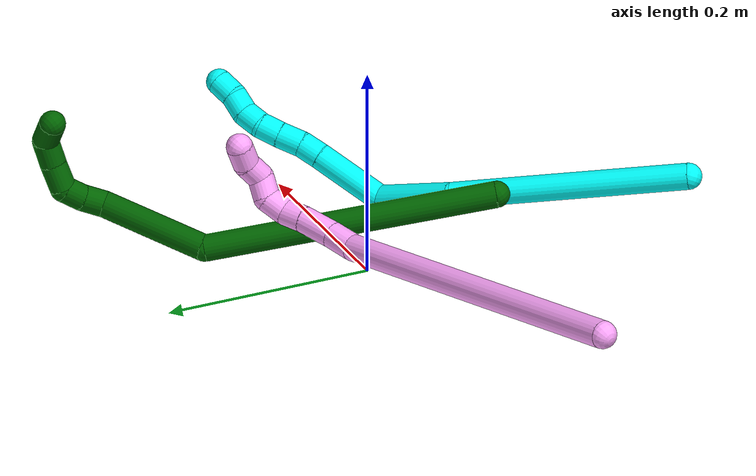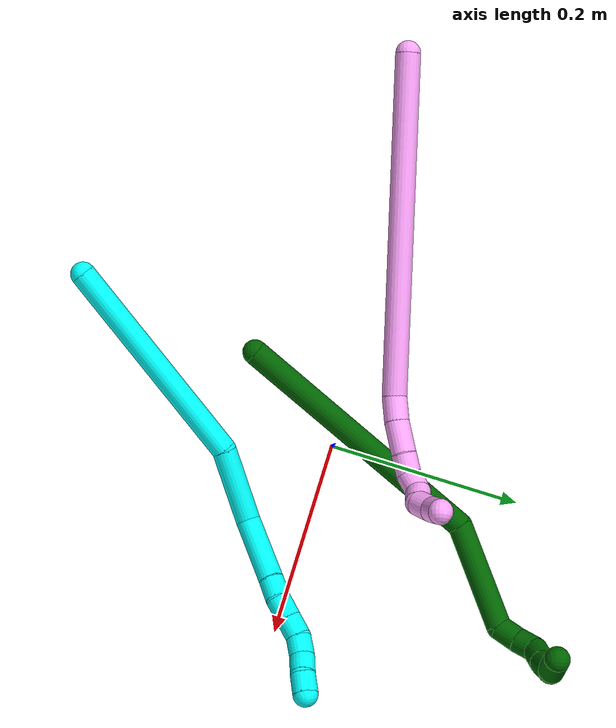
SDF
<sdf version="1.7">
 <world name="default">
  <model name="photoneo_s_sensor">
   <static>1</static>
   <pose>0 0 2 1.57079 1.57079 3.14159</pose>
   <link name="link">
    <inertial><mass>0.1</mass></inertial>
    <sensor name="sensor" type="depth">
     <update_rate>30</update_rate>
     <camera>
      <horizontal_fov>1.22</horizontal_fov>
      <image><width>1920</width><height>1200</height><format>B8G8R8</format></image>
      <clip><near>0.1</near><far>4</far></clip>
      <depth_camera><output>points</output></depth_camera>
     </camera>
     <plugin name="camera_plugin" filename="libgazebo_ros_depth_camera.so">
      <baseline>0.2</baseline>
      <alwaysOn>1</alwaysOn>
      <updateRate>0.0</updateRate>
      <cameraName>camera_ir</cameraName>
      <imageTopicName>/camera/color/image_raw</imageTopicName>
      <cameraInfoTopicName>/camera/color/camera_info</cameraInfoTopicName>
      <depthImageTopicName>/camera/depth/image_raw</depthImageTopicName>
      <depthImageCameraInfoTopicName>/camera/depth/camera_info</depthImageCameraInfoTopicName>
      <pointCloudTopicName>/camera/depth/points</pointCloudTopicName>
      <frameName>fr_optical</frameName>
      <pointCloudCutoff>0.1</pointCloudCutoff>
      <pointCloudCutoffMax>2.0</pointCloudCutoffMax>
      <distortionK1>0</distortionK1>
      <distortionK2>0</distortionK2>
      <distortionK3>0</distortionK3>
      <distortionT1>0</distortionT1>
      <distortionT2>0</distortionT2>
      <CxPrime>0</CxPrime>
      <Cx>0</Cx>
      <Cy>0</Cy>
      <focalLength>0</focalLength>
      <hackBaseline>0</hackBaseline>
     </plugin>
    </sensor>
   </link>
  </model>
  <model name="bin">
   <static>1</static>
   <link name="bottom">
    <collision name="collision-bottom">
     <pose>0 0 -0.01 0 -0 0</pose>
     <geometry><box><size>0.8 0.6 0.02</size></box></geometry>
     <surface>
      <friction><ode><mu>100</mu><mu2>100</mu2></ode></friction>
      <contact><collide_bitmask>65535</collide_bitmask></contact>
     </surface>
    </collision>
   </link>
   <link name="west_wall">
    <collision name="collision-west_wall">
     <pose>-0.41 0 0.1 0 -0 0</pose>
     <geometry><box><size>0.02 0.6 0.2</size></box></geometry>
     <surface>
      <friction><ode><mu>100</mu><mu2>100</mu2></ode></friction>
      <contact><collide_bitmask>65535</collide_bitmask></contact>
     </surface>
    </collision>
   </link>
   <link name="east_wall">
    <collision name="collision-east_wall">
     <pose>0.41 0 0.1 0 -0 0</pose>
     <geometry><box><size>0.02 0.6 0.2</size></box></geometry>
     <surface>
      <friction><ode><mu>100</mu><mu2>100</mu2></ode></friction>
      <contact><collide_bitmask>65535</collide_bitmask></contact>
     </surface>
    </collision>
   </link>
   <link name="south_wall">
    <collision name="collision-south_wall">
     <pose>0 -0.31 0.1 0 -0 0</pose>
     <geometry><box><size>0.8 0.02 0.2</size></box></geometry>
     <surface>
      <friction><ode><mu>100</mu><mu2>100</mu2></ode></friction>
      <contact><collide_bitmask>65535</collide_bitmask></contact>
     </surface>
    </collision>
   </link>
   <link name="north_wall">
    <collision name="collision-north_wall">
     <pose>0 0.31 0.1 0 -0 0</pose>
     <geometry><box><size>0.8 0.02 0.2</size></box></geometry>
     <surface>
      <friction><ode><mu>100</mu><mu2>100</mu2></ode></friction>
      <contact><collide_bitmask>65535</collide_bitmask></contact>
     </surface>
    </collision>
   </link>
  </model>
  <model name="3">
   <static>0</static>
   <link name="3">
    <collision name="collision-cylinder-e_1_1_4">
     <pose>0.067371 0.082291 0.037738 -1.14082 0.639765 -0.418807</pose>
     <geometry><cylinder><radius>0.0125</radius><length>0.225697</length></cylinder></geometry>
     <surface>
      <friction><ode><mu>1.16</mu><mu2>1.16</mu2><slip1>0</slip1><slip2>0</slip2></ode></friction>
      <contact><ode><kp>1e+06</kp><kd>1</kd><max_vel>0</max_vel><min_depth>0.001</min_depth></ode></contact>
     </surface>
    </collision>
    <visual name="visual-cylinder-e_1_1_4">
     <pose>0.067371 0.082291 0.037738 -1.14082 0.639765 -0.418807</pose>
     <geometry><cylinder><radius>0.0125</radius><length>0.225697</length></cylinder></geometry>
     <material><ambient>0.003922 1 0.996078 1</ambient></material>
    </visual>
    <collision name="collision-cylinder-e_2_4_5">
     <pose>0.146873 0.200974 0.084964 -1.31574 0.311994 -0.241865</pose>
     <geometry><cylinder><radius>0.0125</radius><length>0.079034</length></cylinder></geometry>
     <surface>
      <friction><ode><mu>1.16</mu><mu2>1.16</mu2><slip1>0</slip1><slip2>0</slip2></ode></friction>
      <contact><ode><kp>1e+06</kp><kd>1</kd><max_vel>0</max_vel><min_depth>0.001</min_depth></ode></contact>
     </surface>
    </collision>
    <visual name="visual-cylinder-e_2_4_5">
     <pose>0.146873 0.200974 0.084964 -1.31574 0.311994 -0.241865</pose>
     <geometry><cylinder><radius>0.0125</radius><length>0.079034</length></cylinder></geometry>
     <material><ambient>0.003922 1 0.996078 1</ambient></material>
    </visual>
    <collision name="collision-cylinder-e_3_5_6">
     <pose>0.182584 0.260476 0.082961 -2.03227 0.740316 -1.11914</pose>
     <geometry><cylinder><radius>0.0125</radius><length>0.06992</length></cylinder></geometry>
     <surface>
      <friction><ode><mu>1.16</mu><mu2>1.16</mu2><slip1>0</slip1><slip2>0</slip2></ode></friction>
      <contact><ode><kp>1e+06</kp><kd>1</kd><max_vel>0</max_vel><min_depth>0.001</min_depth></ode></contact>
     </surface>
    </collision>
    <visual name="visual-cylinder-e_3_5_6">
     <pose>0.182584 0.260476 0.082961 -2.03227 0.740316 -1.11914</pose>
     <geometry><cylinder><radius>0.0125</radius><length>0.06992</length></cylinder></geometry>
     <material><ambient>0.003922 1 0.996078 1</ambient></material>
    </visual>
    <collision name="collision-cylinder-e_4_6_7">
     <pose>0.212851 0.290991 0.068357 -1.96865 0.694155 -0.997043</pose>
     <geometry><cylinder><radius>0.0125</radius><length>0.020901</length></cylinder></geometry>
     <surface>
      <friction><ode><mu>1.16</mu><mu2>1.16</mu2><slip1>0</slip1><slip2>0</slip2></ode></friction>
      <contact><ode><kp>1e+06</kp><kd>1</kd><max_vel>0</max_vel><min_depth>0.001</min_depth></ode></contact>
     </surface>
    </collision>
    <visual name="visual-cylinder-e_4_6_7">
     <pose>0.212851 0.290991 0.068357 -1.96865 0.694155 -0.997043</pose>
     <geometry><cylinder><radius>0.0125</radius><length>0.020901</length></cylinder></geometry>
     <material><ambient>0.003922 1 0.996078 1</ambient></material>
    </visual>
    <collision name="collision-cylinder-e_5_7_8">
     <pose>0.227687 0.306579 0.063714 -1.75573 0.774762 -0.913487</pose>
     <geometry><cylinder><radius>0.0125</radius><length>0.023301</length></cylinder></geometry>
     <surface>
      <friction><ode><mu>1.16</mu><mu2>1.16</mu2><slip1>0</slip1><slip2>0</slip2></ode></friction>
      <contact><ode><kp>1e+06</kp><kd>1</kd><max_vel>0</max_vel><min_depth>0.001</min_depth></ode></contact>
     </surface>
    </collision>
    <visual name="visual-cylinder-e_5_7_8">
     <pose>0.227687 0.306579 0.063714 -1.75573 0.774762 -0.913487</pose>
     <geometry><cylinder><radius>0.0125</radius><length>0.023301</length></cylinder></geometry>
     <material><ambient>0.003922 1 0.996078 1</ambient></material>
    </visual>
    <collision name="collision-cylinder-e_6_8_9">
     <pose>0.243308 0.321573 0.060257 -1.84633 0.812417 -1.03402</pose>
     <geometry><cylinder><radius>0.0125</radius><length>0.020582</length></cylinder></geometry>
     <surface>
      <friction><ode><mu>1.16</mu><mu2>1.16</mu2><slip1>0</slip1><slip2>0</slip2></ode></friction>
      <contact><ode><kp>1e+06</kp><kd>1</kd><max_vel>0</max_vel><min_depth>0.001</min_depth></ode></contact>
     </surface>
    </collision>
    <visual name="visual-cylinder-e_6_8_9">
     <pose>0.243308 0.321573 0.060257 -1.84633 0.812417 -1.03402</pose>
     <geometry><cylinder><radius>0.0125</radius><length>0.020582</length></cylinder></geometry>
     <material><ambient>0.003922 1 0.996078 1</ambient></material>
    </visual>
    <collision name="collision-cylinder-e_7_9_10">
     <pose>0.255952 0.33618 0.054679 -2.00893 0.541122 -0.8227</pose>
     <geometry><cylinder><radius>0.0125</radius><length>0.020089</length></cylinder></geometry>
     <surface>
      <friction><ode><mu>1.16</mu><mu2>1.16</mu2><slip1>0</slip1><slip2>0</slip2></ode></friction>
      <contact><ode><kp>1e+06</kp><kd>1</kd><max_vel>0</max_vel><min_depth>0.001</min_depth></ode></contact>
     </surface>
    </collision>
    <visual name="visual-cylinder-e_7_9_10">
     <pose>0.255952 0.33618 0.054679 -2.00893 0.541122 -0.8227</pose>
     <geometry><cylinder><radius>0.0125</radius><length>0.020089</length></cylinder></geometry>
     <material><ambient>0.003922 1 0.996078 1</ambient></material>
    </visual>
    <collision name="collision-cylinder-e_8_10_11">
     <pose>0.26605 0.349713 0.044364 -2.43073 0.510496 -1.22544</pose>
     <geometry><cylinder><radius>0.0125</radius><length>0.020152</length></cylinder></geometry>
     <surface>
      <friction><ode><mu>1.16</mu><mu2>1.16</mu2><slip1>0</slip1><slip2>0</slip2></ode></friction>
      <contact><ode><kp>1e+06</kp><kd>1</kd><max_vel>0</max_vel><min_depth>0.001</min_depth></ode></contact>
     </surface>
    </collision>
    <visual name="visual-cylinder-e_8_10_11">
     <pose>0.26605 0.349713 0.044364 -2.43073 0.510496 -1.22544</pose>
     <geometry><cylinder><radius>0.0125</radius><length>0.020152</length></cylinder></geometry>
     <material><ambient>0.003922 1 0.996078 1</ambient></material>
    </visual>
    <collision name="collision-cylinder-e_9_11_2">
     <pose>0.276059 0.362997 0.033183 -2.1103 0.524225 -0.884177</pose>
     <geometry><cylinder><radius>0.0125</radius><length>0.020323</length></cylinder></geometry>
     <surface>
      <friction><ode><mu>1.16</mu><mu2>1.16</mu2><slip1>0</slip1><slip2>0</slip2></ode></friction>
      <contact><ode><kp>1e+06</kp><kd>1</kd><max_vel>0</max_vel><min_depth>0.001</min_depth></ode></contact>
     </surface>
    </collision>
    <visual name="visual-cylinder-e_9_11_2">
     <pose>0.276059 0.362997 0.033183 -2.1103 0.524225 -0.884177</pose>
     <geometry><cylinder><radius>0.0125</radius><length>0.020323</length></cylinder></geometry>
     <material><ambient>0.003922 1 0.996078 1</ambient></material>
    </visual>
    <collision name="collision-sphere-2">
     <pose>0.281145 0.370544 0.028664 0 -0 0</pose>
     <geometry><sphere><radius>0.0125</radius></sphere></geometry>
     <surface>
      <friction><ode><mu>1.16</mu><mu2>1.16</mu2><slip1>0</slip1><slip2>0</slip2></ode></friction>
      <contact><ode><kp>1e+06</kp><kd>1</kd><max_vel>0</max_vel><min_depth>0.001</min_depth></ode></contact>
     </surface>
    </collision>
    <visual name="visual-sphere-2">
     <pose>0.281145 0.370544 0.028664 0 -0 0</pose>
     <geometry><sphere><radius>0.0125</radius></sphere></geometry>
     <material><ambient>0.003922 1 0.996078 1</ambient></material>
    </visual>
    <collision name="collision-sphere-11">
     <pose>0.270973 0.355449 0.037702 0 -0 0</pose>
     <geometry><sphere><radius>0.0125</radius></sphere></geometry>
     <surface>
      <friction><ode><mu>1.16</mu><mu2>1.16</mu2><slip1>0</slip1><slip2>0</slip2></ode></friction>
      <contact><ode><kp>1e+06</kp><kd>1</kd><max_vel>0</max_vel><min_depth>0.001</min_depth></ode></contact>
     </surface>
    </collision>
    <visual name="visual-sphere-11">
     <pose>0.270973 0.355449 0.037702 0 -0 0</pose>
     <geometry><sphere><radius>0.0125</radius></sphere></geometry>
     <material><ambient>0.003922 1 0.996078 1</ambient></material>
    </visual>
    <collision name="collision-sphere-10">
     <pose>0.261126 0.343977 0.051026 0 -0 0</pose>
     <geometry><sphere><radius>0.0125</radius></sphere></geometry>
     <surface>
      <friction><ode><mu>1.16</mu><mu2>1.16</mu2><slip1>0</slip1><slip2>0</slip2></ode></friction>
      <contact><ode><kp>1e+06</kp><kd>1</kd><max_vel>0</max_vel><min_depth>0.001</min_depth></ode></contact>
     </surface>
    </collision>
    <visual name="visual-sphere-10">
     <pose>0.261126 0.343977 0.051026 0 -0 0</pose>
     <geometry><sphere><radius>0.0125</radius></sphere></geometry>
     <material><ambient>0.003922 1 0.996078 1</ambient></material>
    </visual>
    <collision name="collision-sphere-9">
     <pose>0.250778 0.328384 0.058332 0 -0 0</pose>
     <geometry><sphere><radius>0.0125</radius></sphere></geometry>
     <surface>
      <friction><ode><mu>1.16</mu><mu2>1.16</mu2><slip1>0</slip1><slip2>0</slip2></ode></friction>
      <contact><ode><kp>1e+06</kp><kd>1</kd><max_vel>0</max_vel><min_depth>0.001</min_depth></ode></contact>
     </surface>
    </collision>
    <visual name="visual-sphere-9">
     <pose>0.250778 0.328384 0.058332 0 -0 0</pose>
     <geometry><sphere><radius>0.0125</radius></sphere></geometry>
     <material><ambient>0.003922 1 0.996078 1</ambient></material>
    </visual>
    <collision name="collision-sphere-4">
     <pose>0.134743 0.164581 0.075475 0 -0 0</pose>
     <geometry><sphere><radius>0.0125</radius></sphere></geometry>
     <surface>
      <friction><ode><mu>1.16</mu><mu2>1.16</mu2><slip1>0</slip1><slip2>0</slip2></ode></friction>
      <contact><ode><kp>1e+06</kp><kd>1</kd><max_vel>0</max_vel><min_depth>0.001</min_depth></ode></contact>
     </surface>
    </collision>
    <visual name="visual-sphere-4">
     <pose>0.134743 0.164581 0.075475 0 -0 0</pose>
     <geometry><sphere><radius>0.0125</radius></sphere></geometry>
     <material><ambient>0.003922 1 0.996078 1</ambient></material>
    </visual>
    <collision name="collision-sphere-1">
     <geometry><sphere><radius>0.0125</radius></sphere></geometry>
     <surface>
      <friction><ode><mu>1.16</mu><mu2>1.16</mu2><slip1>0</slip1><slip2>0</slip2></ode></friction>
      <contact><ode><kp>1e+06</kp><kd>1</kd><max_vel>0</max_vel><min_depth>0.001</min_depth></ode></contact>
     </surface>
    </collision>
    <visual name="visual-sphere-1">
     <geometry><sphere><radius>0.0125</radius></sphere></geometry>
     <material><ambient>0.003922 1 0.996078 1</ambient></material>
    </visual>
    <collision name="collision-sphere-8">
     <pose>0.235837 0.314762 0.062183 0 -0 0</pose>
     <geometry><sphere><radius>0.0125</radius></sphere></geometry>
     <surface>
      <friction><ode><mu>1.16</mu><mu2>1.16</mu2><slip1>0</slip1><slip2>0</slip2></ode></friction>
      <contact><ode><kp>1e+06</kp><kd>1</kd><max_vel>0</max_vel><min_depth>0.001</min_depth></ode></contact>
     </surface>
    </collision>
    <visual name="visual-sphere-8">
     <pose>0.235837 0.314762 0.062183 0 -0 0</pose>
     <geometry><sphere><radius>0.0125</radius></sphere></geometry>
     <material><ambient>0.003922 1 0.996078 1</ambient></material>
    </visual>
    <collision name="collision-sphere-5">
     <pose>0.159003 0.237366 0.094453 0 -0 0</pose>
     <geometry><sphere><radius>0.0125</radius></sphere></geometry>
     <surface>
      <friction><ode><mu>1.16</mu><mu2>1.16</mu2><slip1>0</slip1><slip2>0</slip2></ode></friction>
      <contact><ode><kp>1e+06</kp><kd>1</kd><max_vel>0</max_vel><min_depth>0.001</min_depth></ode></contact>
     </surface>
    </collision>
    <visual name="visual-sphere-5">
     <pose>0.159003 0.237366 0.094453 0 -0 0</pose>
     <geometry><sphere><radius>0.0125</radius></sphere></geometry>
     <material><ambient>0.003922 1 0.996078 1</ambient></material>
    </visual>
    <collision name="collision-sphere-6">
     <pose>0.206165 0.283586 0.071469 0 -0 0</pose>
     <geometry><sphere><radius>0.0125</radius></sphere></geometry>
     <surface>
      <friction><ode><mu>1.16</mu><mu2>1.16</mu2><slip1>0</slip1><slip2>0</slip2></ode></friction>
      <contact><ode><kp>1e+06</kp><kd>1</kd><max_vel>0</max_vel><min_depth>0.001</min_depth></ode></contact>
     </surface>
    </collision>
    <visual name="visual-sphere-6">
     <pose>0.206165 0.283586 0.071469 0 -0 0</pose>
     <geometry><sphere><radius>0.0125</radius></sphere></geometry>
     <material><ambient>0.003922 1 0.996078 1</ambient></material>
    </visual>
    <collision name="collision-sphere-7">
     <pose>0.219537 0.298396 0.065244 0 -0 0</pose>
     <geometry><sphere><radius>0.0125</radius></sphere></geometry>
     <surface>
      <friction><ode><mu>1.16</mu><mu2>1.16</mu2><slip1>0</slip1><slip2>0</slip2></ode></friction>
      <contact><ode><kp>1e+06</kp><kd>1</kd><max_vel>0</max_vel><min_depth>0.001</min_depth></ode></contact>
     </surface>
    </collision>
    <visual name="visual-sphere-7">
     <pose>0.219537 0.298396 0.065244 0 -0 0</pose>
     <geometry><sphere><radius>0.0125</radius></sphere></geometry>
     <material><ambient>0.003922 1 0.996078 1</ambient></material>
    </visual>
    <inertial>
     <pose>0.140911 0.187383 0.055707 0 -0 0</pose>
     <mass>0.5</mass>
     <inertia>
      <ixx>0.000433</ixx>
      <ixy>0</ixy>
      <ixz>0</ixz>
      <iyy>0.000285</iyy>
      <iyz>0</iyz>
      <izz>-0.001388</izz>
     </inertia>
    </inertial>
   </link>
   <pose>-0.08921 -0.28724 0.077754 -2.86666 -0.504254 1.64119</pose>
  </model>
  <model name="4">
   <static>0</static>
   <link name="4">
    <collision name="collision-cylinder-e_1_1_4">
     <pose>0.029103 0.045465 -0.160338 -2.86529 0.172883 -1.1147</pose>
     <geometry><cylinder><radius>0.0125</radius><length>0.338363</length></cylinder></geometry>
     <surface>
      <friction><ode><mu>1.16</mu><mu2>1.16</mu2><slip1>0</slip1><slip2>0</slip2></ode></friction>
      <contact><ode><kp>1e+06</kp><kd>1</kd><max_vel>0</max_vel><min_depth>0.001</min_depth></ode></contact>
     </surface>
    </collision>
    <visual name="visual-cylinder-e_1_1_4">
     <pose>0.029103 0.045465 -0.160338 -2.86529 0.172883 -1.1147</pose>
     <geometry><cylinder><radius>0.0125</radius><length>0.338363</length></cylinder></geometry>
     <material><ambient>1 0.65098 0.996078 1</ambient></material>
    </visual>
    <collision name="collision-cylinder-e_2_4_5">
     <pose>0.05994 0.090451 -0.333598 3.10451 0.133275 2.59952</pose>
     <geometry><cylinder><radius>0.0125</radius><length>0.026092</length></cylinder></geometry>
     <surface>
      <friction><ode><mu>1.16</mu><mu2>1.16</mu2><slip1>0</slip1><slip2>0</slip2></ode></friction>
      <contact><ode><kp>1e+06</kp><kd>1</kd><max_vel>0</max_vel><min_depth>0.001</min_depth></ode></contact>
     </surface>
    </collision>
    <visual name="visual-cylinder-e_2_4_5">
     <pose>0.05994 0.090451 -0.333598 3.10451 0.133275 2.59952</pose>
     <geometry><cylinder><radius>0.0125</radius><length>0.026092</length></cylinder></geometry>
     <material><ambient>1 0.65098 0.996078 1</ambient></material>
    </visual>
    <collision name="collision-cylinder-e_3_5_6">
     <pose>0.065242 0.087956 -0.362496 3.01607 0.218104 2.09944</pose>
     <geometry><cylinder><radius>0.0125</radius><length>0.032988</length></cylinder></geometry>
     <surface>
      <friction><ode><mu>1.16</mu><mu2>1.16</mu2><slip1>0</slip1><slip2>0</slip2></ode></friction>
      <contact><ode><kp>1e+06</kp><kd>1</kd><max_vel>0</max_vel><min_depth>0.001</min_depth></ode></contact>
     </surface>
    </collision>
    <visual name="visual-cylinder-e_3_5_6">
     <pose>0.065242 0.087956 -0.362496 3.01607 0.218104 2.09944</pose>
     <geometry><cylinder><radius>0.0125</radius><length>0.032988</length></cylinder></geometry>
     <material><ambient>1 0.65098 0.996078 1</ambient></material>
    </visual>
    <collision name="collision-cylinder-e_4_6_7">
     <pose>0.071885 0.085371 -0.388721 3.08616 0.290981 2.76761</pose>
     <geometry><cylinder><radius>0.0125</radius><length>0.021429</length></cylinder></geometry>
     <surface>
      <friction><ode><mu>1.16</mu><mu2>1.16</mu2><slip1>0</slip1><slip2>0</slip2></ode></friction>
      <contact><ode><kp>1e+06</kp><kd>1</kd><max_vel>0</max_vel><min_depth>0.001</min_depth></ode></contact>
     </surface>
    </collision>
    <visual name="visual-cylinder-e_4_6_7">
     <pose>0.071885 0.085371 -0.388721 3.08616 0.290981 2.76761</pose>
     <geometry><cylinder><radius>0.0125</radius><length>0.021429</length></cylinder></geometry>
     <material><ambient>1 0.65098 0.996078 1</ambient></material>
    </visual>
    <collision name="collision-cylinder-e_5_7_8">
     <pose>0.077044 0.079175 -0.407505 2.55874 0.201177 0.649139</pose>
     <geometry><cylinder><radius>0.0125</radius><length>0.020868</length></cylinder></geometry>
     <surface>
      <friction><ode><mu>1.16</mu><mu2>1.16</mu2><slip1>0</slip1><slip2>0</slip2></ode></friction>
      <contact><ode><kp>1e+06</kp><kd>1</kd><max_vel>0</max_vel><min_depth>0.001</min_depth></ode></contact>
     </surface>
    </collision>
    <visual name="visual-cylinder-e_5_7_8">
     <pose>0.077044 0.079175 -0.407505 2.55874 0.201177 0.649139</pose>
     <geometry><cylinder><radius>0.0125</radius><length>0.020868</length></cylinder></geometry>
     <material><ambient>1 0.65098 0.996078 1</ambient></material>
    </visual>
    <collision name="collision-cylinder-e_6_8_9">
     <pose>0.075059 0.067398 -0.422811 2.4042 -0.418638 -1.00541</pose>
     <geometry><cylinder><radius>0.0125</radius><length>0.020023</length></cylinder></geometry>
     <surface>
      <friction><ode><mu>1.16</mu><mu2>1.16</mu2><slip1>0</slip1><slip2>0</slip2></ode></friction>
      <contact><ode><kp>1e+06</kp><kd>1</kd><max_vel>0</max_vel><min_depth>0.001</min_depth></ode></contact>
     </surface>
    </collision>
    <visual name="visual-cylinder-e_6_8_9">
     <pose>0.075059 0.067398 -0.422811 2.4042 -0.418638 -1.00541</pose>
     <geometry><cylinder><radius>0.0125</radius><length>0.020023</length></cylinder></geometry>
     <material><ambient>1 0.65098 0.996078 1</ambient></material>
    </visual>
    <collision name="collision-cylinder-e_7_9_10">
     <pose>0.07296 0.052237 -0.4336 1.9902 0.197116 0.302369</pose>
     <geometry><cylinder><radius>0.0125</radius><length>0.020123</length></cylinder></geometry>
     <surface>
      <friction><ode><mu>1.16</mu><mu2>1.16</mu2><slip1>0</slip1><slip2>0</slip2></ode></friction>
      <contact><ode><kp>1e+06</kp><kd>1</kd><max_vel>0</max_vel><min_depth>0.001</min_depth></ode></contact>
     </surface>
    </collision>
    <visual name="visual-cylinder-e_7_9_10">
     <pose>0.07296 0.052237 -0.4336 1.9902 0.197116 0.302369</pose>
     <geometry><cylinder><radius>0.0125</radius><length>0.020123</length></cylinder></geometry>
     <material><ambient>1 0.65098 0.996078 1</ambient></material>
    </visual>
    <collision name="collision-cylinder-e_8_10_2">
     <pose>0.073407 0.03358 -0.440022 1.8151 -0.152067 -0.194389</pose>
     <geometry><cylinder><radius>0.0125</radius><length>0.020114</length></cylinder></geometry>
     <surface>
      <friction><ode><mu>1.16</mu><mu2>1.16</mu2><slip1>0</slip1><slip2>0</slip2></ode></friction>
      <contact><ode><kp>1e+06</kp><kd>1</kd><max_vel>0</max_vel><min_depth>0.001</min_depth></ode></contact>
     </surface>
    </collision>
    <visual name="visual-cylinder-e_8_10_2">
     <pose>0.073407 0.03358 -0.440022 1.8151 -0.152067 -0.194389</pose>
     <geometry><cylinder><radius>0.0125</radius><length>0.020114</length></cylinder></geometry>
     <material><ambient>1 0.65098 0.996078 1</ambient></material>
    </visual>
    <collision name="collision-sphere-2">
     <pose>0.071884 0.023934 -0.442427 0 -0 0</pose>
     <geometry><sphere><radius>0.0125</radius></sphere></geometry>
     <surface>
      <friction><ode><mu>1.16</mu><mu2>1.16</mu2><slip1>0</slip1><slip2>0</slip2></ode></friction>
      <contact><ode><kp>1e+06</kp><kd>1</kd><max_vel>0</max_vel><min_depth>0.001</min_depth></ode></contact>
     </surface>
    </collision>
    <visual name="visual-sphere-2">
     <pose>0.071884 0.023934 -0.442427 0 -0 0</pose>
     <geometry><sphere><radius>0.0125</radius></sphere></geometry>
     <material><ambient>1 0.65098 0.996078 1</ambient></material>
    </visual>
    <collision name="collision-sphere-10">
     <pose>0.07493 0.043226 -0.437618 0 -0 0</pose>
     <geometry><sphere><radius>0.0125</radius></sphere></geometry>
     <surface>
      <friction><ode><mu>1.16</mu><mu2>1.16</mu2><slip1>0</slip1><slip2>0</slip2></ode></friction>
      <contact><ode><kp>1e+06</kp><kd>1</kd><max_vel>0</max_vel><min_depth>0.001</min_depth></ode></contact>
     </surface>
    </collision>
    <visual name="visual-sphere-10">
     <pose>0.07493 0.043226 -0.437618 0 -0 0</pose>
     <geometry><sphere><radius>0.0125</radius></sphere></geometry>
     <material><ambient>1 0.65098 0.996078 1</ambient></material>
    </visual>
    <collision name="collision-sphere-9">
     <pose>0.07099 0.061249 -0.429582 0 -0 0</pose>
     <geometry><sphere><radius>0.0125</radius></sphere></geometry>
     <surface>
      <friction><ode><mu>1.16</mu><mu2>1.16</mu2><slip1>0</slip1><slip2>0</slip2></ode></friction>
      <contact><ode><kp>1e+06</kp><kd>1</kd><max_vel>0</max_vel><min_depth>0.001</min_depth></ode></contact>
     </surface>
    </collision>
    <visual name="visual-sphere-9">
     <pose>0.07099 0.061249 -0.429582 0 -0 0</pose>
     <geometry><sphere><radius>0.0125</radius></sphere></geometry>
     <material><ambient>1 0.65098 0.996078 1</ambient></material>
    </visual>
    <collision name="collision-sphere-4">
     <pose>0.058206 0.090931 -0.320676 0 -0 0</pose>
     <geometry><sphere><radius>0.0125</radius></sphere></geometry>
     <surface>
      <friction><ode><mu>1.16</mu><mu2>1.16</mu2><slip1>0</slip1><slip2>0</slip2></ode></friction>
      <contact><ode><kp>1e+06</kp><kd>1</kd><max_vel>0</max_vel><min_depth>0.001</min_depth></ode></contact>
     </surface>
    </collision>
    <visual name="visual-sphere-4">
     <pose>0.058206 0.090931 -0.320676 0 -0 0</pose>
     <geometry><sphere><radius>0.0125</radius></sphere></geometry>
     <material><ambient>1 0.65098 0.996078 1</ambient></material>
    </visual>
    <collision name="collision-sphere-1">
     <geometry><sphere><radius>0.0125</radius></sphere></geometry>
     <surface>
      <friction><ode><mu>1.16</mu><mu2>1.16</mu2><slip1>0</slip1><slip2>0</slip2></ode></friction>
      <contact><ode><kp>1e+06</kp><kd>1</kd><max_vel>0</max_vel><min_depth>0.001</min_depth></ode></contact>
     </surface>
    </collision>
    <visual name="visual-sphere-1">
     <geometry><sphere><radius>0.0125</radius></sphere></geometry>
     <material><ambient>1 0.65098 0.996078 1</ambient></material>
    </visual>
    <collision name="collision-sphere-8">
     <pose>0.079129 0.073548 -0.41604 0 -0 0</pose>
     <geometry><sphere><radius>0.0125</radius></sphere></geometry>
     <surface>
      <friction><ode><mu>1.16</mu><mu2>1.16</mu2><slip1>0</slip1><slip2>0</slip2></ode></friction>
      <contact><ode><kp>1e+06</kp><kd>1</kd><max_vel>0</max_vel><min_depth>0.001</min_depth></ode></contact>
     </surface>
    </collision>
    <visual name="visual-sphere-8">
     <pose>0.079129 0.073548 -0.41604 0 -0 0</pose>
     <geometry><sphere><radius>0.0125</radius></sphere></geometry>
     <material><ambient>1 0.65098 0.996078 1</ambient></material>
    </visual>
    <collision name="collision-sphere-5">
     <pose>0.061674 0.089972 -0.346519 0 -0 0</pose>
     <geometry><sphere><radius>0.0125</radius></sphere></geometry>
     <surface>
      <friction><ode><mu>1.16</mu><mu2>1.16</mu2><slip1>0</slip1><slip2>0</slip2></ode></friction>
      <contact><ode><kp>1e+06</kp><kd>1</kd><max_vel>0</max_vel><min_depth>0.001</min_depth></ode></contact>
     </surface>
    </collision>
    <visual name="visual-sphere-5">
     <pose>0.061674 0.089972 -0.346519 0 -0 0</pose>
     <geometry><sphere><radius>0.0125</radius></sphere></geometry>
     <material><ambient>1 0.65098 0.996078 1</ambient></material>
    </visual>
    <collision name="collision-sphere-6">
     <pose>0.068811 0.08594 -0.378473 0 -0 0</pose>
     <geometry><sphere><radius>0.0125</radius></sphere></geometry>
     <surface>
      <friction><ode><mu>1.16</mu><mu2>1.16</mu2><slip1>0</slip1><slip2>0</slip2></ode></friction>
      <contact><ode><kp>1e+06</kp><kd>1</kd><max_vel>0</max_vel><min_depth>0.001</min_depth></ode></contact>
     </surface>
    </collision>
    <visual name="visual-sphere-6">
     <pose>0.068811 0.08594 -0.378473 0 -0 0</pose>
     <geometry><sphere><radius>0.0125</radius></sphere></geometry>
     <material><ambient>1 0.65098 0.996078 1</ambient></material>
    </visual>
    <collision name="collision-sphere-7">
     <pose>0.074959 0.084803 -0.398969 0 -0 0</pose>
     <geometry><sphere><radius>0.0125</radius></sphere></geometry>
     <surface>
      <friction><ode><mu>1.16</mu><mu2>1.16</mu2><slip1>0</slip1><slip2>0</slip2></ode></friction>
      <contact><ode><kp>1e+06</kp><kd>1</kd><max_vel>0</max_vel><min_depth>0.001</min_depth></ode></contact>
     </surface>
    </collision>
    <visual name="visual-sphere-7">
     <pose>0.074959 0.084803 -0.398969 0 -0 0</pose>
     <geometry><sphere><radius>0.0125</radius></sphere></geometry>
     <material><ambient>1 0.65098 0.996078 1</ambient></material>
    </visual>
    <inertial>
     <pose>0.042319 0.054406 -0.23558 0 -0 0</pose>
     <mass>0.5</mass>
     <inertia>
      <ixx>-0.00145</ixx>
      <ixy>0</ixy>
      <ixz>0</ixz>
      <iyy>-0.004092</iyy>
      <iyz>0</iyz>
      <izz>-0.00146</izz>
     </inertia>
    </inertial>
   </link>
   <pose>-0.38851 -0.043013 0.109737 -1.78491 0.49697 1.71141</pose>
  </model>
  <model name="6">
   <static>0</static>
   <link name="6">
    <collision name="collision-cylinder-e_1_1_4">
     <pose>0.046018 0.06206 0.112425 -0.504386 0.344092 -0.089491</pose>
     <geometry><cylinder><radius>0.0125</radius><length>0.272825</length></cylinder></geometry>
     <surface>
      <friction><ode><mu>1.16</mu><mu2>1.16</mu2><slip1>0</slip1><slip2>0</slip2></ode></friction>
      <contact><ode><kp>1e+06</kp><kd>1</kd><max_vel>0</max_vel><min_depth>0.001</min_depth></ode></contact>
     </surface>
    </collision>
    <visual name="visual-cylinder-e_1_1_4">
     <pose>0.046018 0.06206 0.112425 -0.504386 0.344092 -0.089491</pose>
     <geometry><cylinder><radius>0.0125</radius><length>0.272825</length></cylinder></geometry>
     <material><ambient>0 0.392157 0.003922 1</ambient></material>
    </visual>
    <collision name="collision-cylinder-e_2_4_5">
     <pose>0.126765 0.161725 0.242308 -1.13614 0.697282 -0.455927</pose>
     <geometry><cylinder><radius>0.0125</radius><length>0.108169</length></cylinder></geometry>
     <surface>
      <friction><ode><mu>1.16</mu><mu2>1.16</mu2><slip1>0</slip1><slip2>0</slip2></ode></friction>
      <contact><ode><kp>1e+06</kp><kd>1</kd><max_vel>0</max_vel><min_depth>0.001</min_depth></ode></contact>
     </surface>
    </collision>
    <visual name="visual-cylinder-e_2_4_5">
     <pose>0.126765 0.161725 0.242308 -1.13614 0.697282 -0.455927</pose>
     <geometry><cylinder><radius>0.0125</radius><length>0.108169</length></cylinder></geometry>
     <material><ambient>0 0.392157 0.003922 1</ambient></material>
    </visual>
    <collision name="collision-cylinder-e_3_5_6">
     <pose>0.170102 0.20117 0.266656 -0.260921 0.879019 -0.123225</pose>
     <geometry><cylinder><radius>0.0125</radius><length>0.022355</length></cylinder></geometry>
     <surface>
      <friction><ode><mu>1.16</mu><mu2>1.16</mu2><slip1>0</slip1><slip2>0</slip2></ode></friction>
      <contact><ode><kp>1e+06</kp><kd>1</kd><max_vel>0</max_vel><min_depth>0.001</min_depth></ode></contact>
     </surface>
    </collision>
    <visual name="visual-cylinder-e_3_5_6">
     <pose>0.170102 0.20117 0.266656 -0.260921 0.879019 -0.123225</pose>
     <geometry><cylinder><radius>0.0125</radius><length>0.022355</length></cylinder></geometry>
     <material><ambient>0 0.392157 0.003922 1</ambient></material>
    </visual>
    <collision name="collision-cylinder-e_4_6_7">
     <pose>0.187568 0.202835 0.278793 0.033215 1.0357 0.018924</pose>
     <geometry><cylinder><radius>0.0125</radius><length>0.020593</length></cylinder></geometry>
     <surface>
      <friction><ode><mu>1.16</mu><mu2>1.16</mu2><slip1>0</slip1><slip2>0</slip2></ode></friction>
      <contact><ode><kp>1e+06</kp><kd>1</kd><max_vel>0</max_vel><min_depth>0.001</min_depth></ode></contact>
     </surface>
    </collision>
    <visual name="visual-cylinder-e_4_6_7">
     <pose>0.187568 0.202835 0.278793 0.033215 1.0357 0.018924</pose>
     <geometry><cylinder><radius>0.0125</radius><length>0.020593</length></cylinder></geometry>
     <material><ambient>0 0.392157 0.003922 1</ambient></material>
    </visual>
    <collision name="collision-cylinder-e_5_7_8">
     <pose>0.208789 0.202547 0.281682 3.09375 1.38214 3.08376</pose>
     <geometry><cylinder><radius>0.0125</radius><length>0.025175</length></cylinder></geometry>
     <surface>
      <friction><ode><mu>1.16</mu><mu2>1.16</mu2><slip1>0</slip1><slip2>0</slip2></ode></friction>
      <contact><ode><kp>1e+06</kp><kd>1</kd><max_vel>0</max_vel><min_depth>0.001</min_depth></ode></contact>
     </surface>
    </collision>
    <visual name="visual-cylinder-e_5_7_8">
     <pose>0.208789 0.202547 0.281682 3.09375 1.38214 3.08376</pose>
     <geometry><cylinder><radius>0.0125</radius><length>0.025175</length></cylinder></geometry>
     <material><ambient>0 0.392157 0.003922 1</ambient></material>
    </visual>
    <collision name="collision-cylinder-e_6_8_9">
     <pose>0.232984 0.200297 0.277063 2.38441 1.3136 2.18897</pose>
     <geometry><cylinder><radius>0.0125</radius><length>0.024467</length></cylinder></geometry>
     <surface>
      <friction><ode><mu>1.16</mu><mu2>1.16</mu2><slip1>0</slip1><slip2>0</slip2></ode></friction>
      <contact><ode><kp>1e+06</kp><kd>1</kd><max_vel>0</max_vel><min_depth>0.001</min_depth></ode></contact>
     </surface>
    </collision>
    <visual name="visual-cylinder-e_6_8_9">
     <pose>0.232984 0.200297 0.277063 2.38441 1.3136 2.18897</pose>
     <geometry><cylinder><radius>0.0125</radius><length>0.024467</length></cylinder></geometry>
     <material><ambient>0 0.392157 0.003922 1</ambient></material>
    </visual>
    <collision name="collision-cylinder-e_7_9_2">
     <pose>0.252024 0.187828 0.270831 1.93763 0.577301 0.815909</pose>
     <geometry><cylinder><radius>0.0125</radius><length>0.026417</length></cylinder></geometry>
     <surface>
      <friction><ode><mu>1.16</mu><mu2>1.16</mu2><slip1>0</slip1><slip2>0</slip2></ode></friction>
      <contact><ode><kp>1e+06</kp><kd>1</kd><max_vel>0</max_vel><min_depth>0.001</min_depth></ode></contact>
     </surface>
    </collision>
    <visual name="visual-cylinder-e_7_9_2">
     <pose>0.252024 0.187828 0.270831 1.93763 0.577301 0.815909</pose>
     <geometry><cylinder><radius>0.0125</radius><length>0.026417</length></cylinder></geometry>
     <material><ambient>0 0.392157 0.003922 1</ambient></material>
    </visual>
    <collision name="collision-sphere-2">
     <pose>0.259232 0.177497 0.266862 0 -0 0</pose>
     <geometry><sphere><radius>0.0125</radius></sphere></geometry>
     <surface>
      <friction><ode><mu>1.16</mu><mu2>1.16</mu2><slip1>0</slip1><slip2>0</slip2></ode></friction>
      <contact><ode><kp>1e+06</kp><kd>1</kd><max_vel>0</max_vel><min_depth>0.001</min_depth></ode></contact>
     </surface>
    </collision>
    <visual name="visual-sphere-2">
     <pose>0.259232 0.177497 0.266862 0 -0 0</pose>
     <geometry><sphere><radius>0.0125</radius></sphere></geometry>
     <material><ambient>0 0.392157 0.003922 1</ambient></material>
    </visual>
    <collision name="collision-sphere-9">
     <pose>0.244815 0.19816 0.274801 0 -0 0</pose>
     <geometry><sphere><radius>0.0125</radius></sphere></geometry>
     <surface>
      <friction><ode><mu>1.16</mu><mu2>1.16</mu2><slip1>0</slip1><slip2>0</slip2></ode></friction>
      <contact><ode><kp>1e+06</kp><kd>1</kd><max_vel>0</max_vel><min_depth>0.001</min_depth></ode></contact>
     </surface>
    </collision>
    <visual name="visual-sphere-9">
     <pose>0.244815 0.19816 0.274801 0 -0 0</pose>
     <geometry><sphere><radius>0.0125</radius></sphere></geometry>
     <material><ambient>0 0.392157 0.003922 1</ambient></material>
    </visual>
    <collision name="collision-sphere-4">
     <pose>0.092035 0.124119 0.224849 0 -0 0</pose>
     <geometry><sphere><radius>0.0125</radius></sphere></geometry>
     <surface>
      <friction><ode><mu>1.16</mu><mu2>1.16</mu2><slip1>0</slip1><slip2>0</slip2></ode></friction>
      <contact><ode><kp>1e+06</kp><kd>1</kd><max_vel>0</max_vel><min_depth>0.001</min_depth></ode></contact>
     </surface>
    </collision>
    <visual name="visual-sphere-4">
     <pose>0.092035 0.124119 0.224849 0 -0 0</pose>
     <geometry><sphere><radius>0.0125</radius></sphere></geometry>
     <material><ambient>0 0.392157 0.003922 1</ambient></material>
    </visual>
    <collision name="collision-sphere-1">
     <geometry><sphere><radius>0.0125</radius></sphere></geometry>
     <surface>
      <friction><ode><mu>1.16</mu><mu2>1.16</mu2><slip1>0</slip1><slip2>0</slip2></ode></friction>
      <contact><ode><kp>1e+06</kp><kd>1</kd><max_vel>0</max_vel><min_depth>0.001</min_depth></ode></contact>
     </surface>
    </collision>
    <visual name="visual-sphere-1">
     <geometry><sphere><radius>0.0125</radius></sphere></geometry>
     <material><ambient>0 0.392157 0.003922 1</ambient></material>
    </visual>
    <collision name="collision-sphere-8">
     <pose>0.221153 0.202434 0.279324 0 -0 0</pose>
     <geometry><sphere><radius>0.0125</radius></sphere></geometry>
     <surface>
      <friction><ode><mu>1.16</mu><mu2>1.16</mu2><slip1>0</slip1><slip2>0</slip2></ode></friction>
      <contact><ode><kp>1e+06</kp><kd>1</kd><max_vel>0</max_vel><min_depth>0.001</min_depth></ode></contact>
     </surface>
    </collision>
    <visual name="visual-sphere-8">
     <pose>0.221153 0.202434 0.279324 0 -0 0</pose>
     <geometry><sphere><radius>0.0125</radius></sphere></geometry>
     <material><ambient>0 0.392157 0.003922 1</ambient></material>
    </visual>
    <collision name="collision-sphere-5">
     <pose>0.161494 0.19933 0.259767 0 -0 0</pose>
     <geometry><sphere><radius>0.0125</radius></sphere></geometry>
     <surface>
      <friction><ode><mu>1.16</mu><mu2>1.16</mu2><slip1>0</slip1><slip2>0</slip2></ode></friction>
      <contact><ode><kp>1e+06</kp><kd>1</kd><max_vel>0</max_vel><min_depth>0.001</min_depth></ode></contact>
     </surface>
    </collision>
    <visual name="visual-sphere-5">
     <pose>0.161494 0.19933 0.259767 0 -0 0</pose>
     <geometry><sphere><radius>0.0125</radius></sphere></geometry>
     <material><ambient>0 0.392157 0.003922 1</ambient></material>
    </visual>
    <collision name="collision-sphere-6">
     <pose>0.17871 0.203009 0.273545 0 -0 0</pose>
     <geometry><sphere><radius>0.0125</radius></sphere></geometry>
     <surface>
      <friction><ode><mu>1.16</mu><mu2>1.16</mu2><slip1>0</slip1><slip2>0</slip2></ode></friction>
      <contact><ode><kp>1e+06</kp><kd>1</kd><max_vel>0</max_vel><min_depth>0.001</min_depth></ode></contact>
     </surface>
    </collision>
    <visual name="visual-sphere-6">
     <pose>0.17871 0.203009 0.273545 0 -0 0</pose>
     <geometry><sphere><radius>0.0125</radius></sphere></geometry>
     <material><ambient>0 0.392157 0.003922 1</ambient></material>
    </visual>
    <collision name="collision-sphere-7">
     <pose>0.196425 0.20266 0.28404 0 -0 0</pose>
     <geometry><sphere><radius>0.0125</radius></sphere></geometry>
     <surface>
      <friction><ode><mu>1.16</mu><mu2>1.16</mu2><slip1>0</slip1><slip2>0</slip2></ode></friction>
      <contact><ode><kp>1e+06</kp><kd>1</kd><max_vel>0</max_vel><min_depth>0.001</min_depth></ode></contact>
     </surface>
    </collision>
    <visual name="visual-sphere-7">
     <pose>0.196425 0.20266 0.28404 0 -0 0</pose>
     <geometry><sphere><radius>0.0125</radius></sphere></geometry>
     <material><ambient>0 0.392157 0.003922 1</ambient></material>
    </visual>
    <inertial>
     <pose>0.103092 0.116121 0.179219 0 -0 0</pose>
     <mass>0.5</mass>
     <inertia>
      <ixx>0.001517</ixx>
      <ixy>0</ixy>
      <ixz>0</ixz>
      <iyy>0.001423</iyy>
      <iyz>0</iyz>
      <izz>-0.001481</izz>
     </inertia>
    </inertial>
   </link>
   <pose>-0.064868 -0.100476 0.087353 -2.41089 -1.03044 0.957946</pose>
  </model>
 </world>
</sdf>
